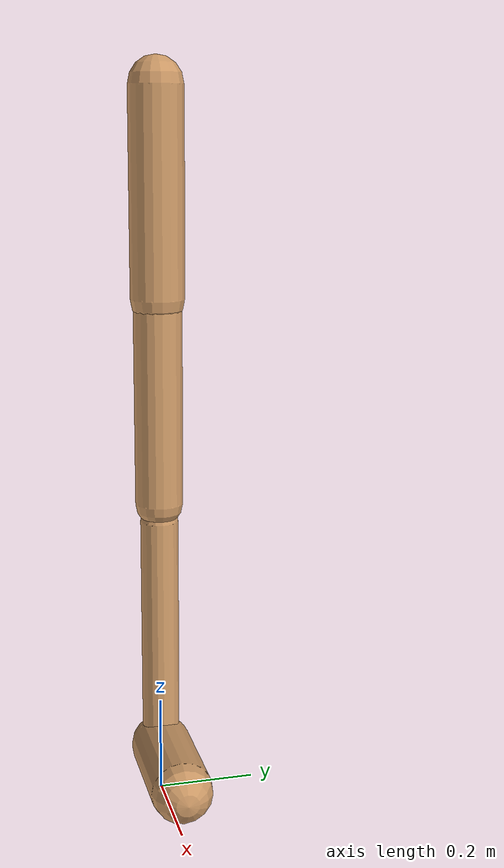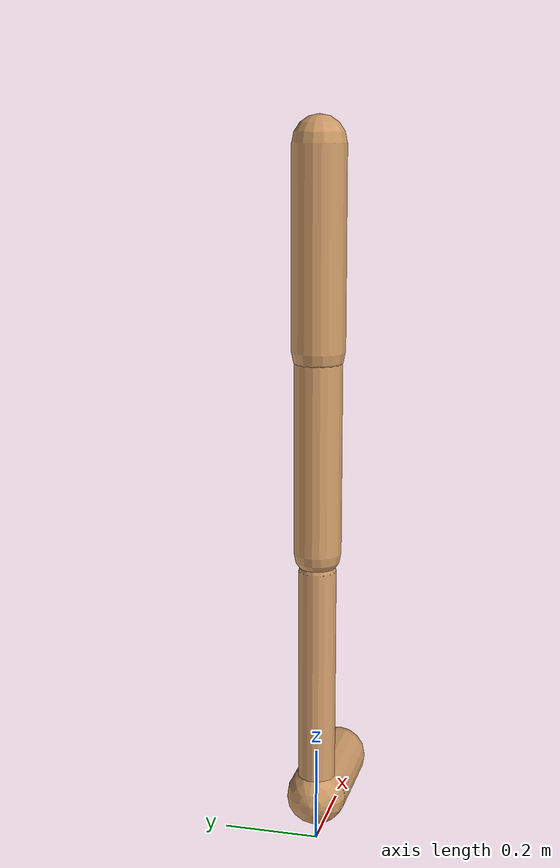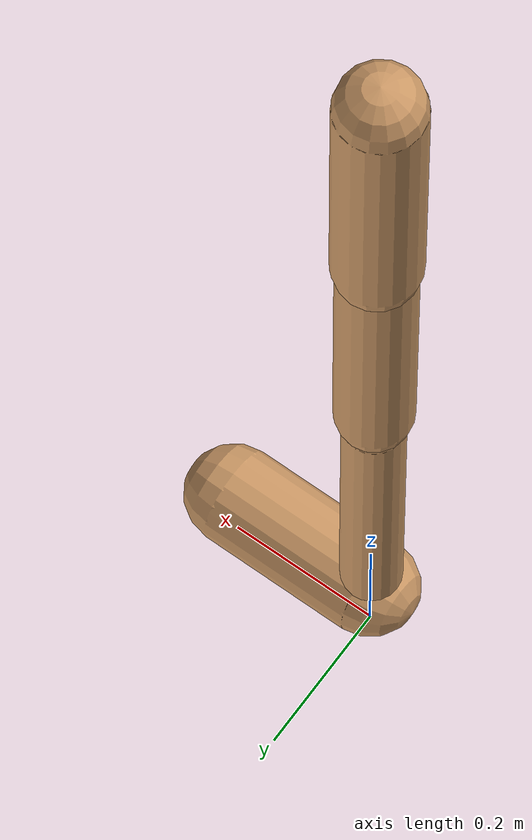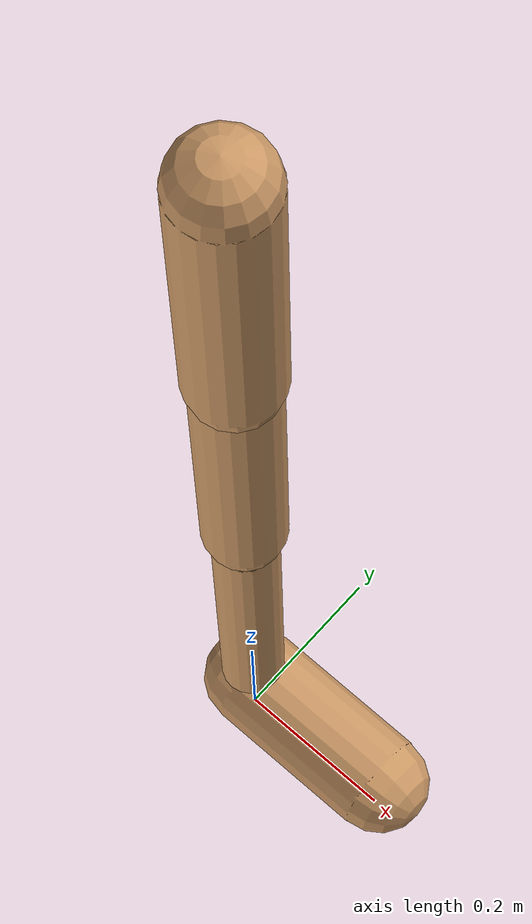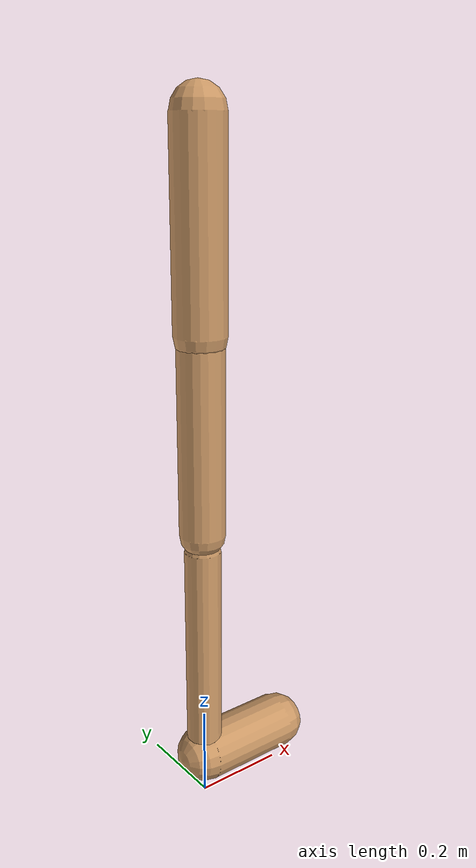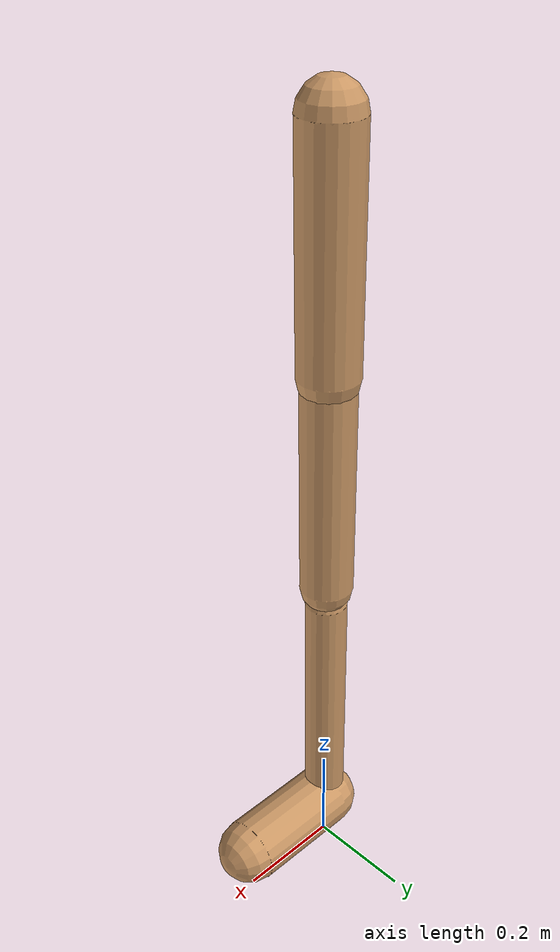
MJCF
<mujoco model="walker2d">
  <compiler angle="degree" coordinate="global" inertiafromgeom="true" />
  <default>
    <joint armature="0.01" damping=".1" limited="true" />
    <geom conaffinity="0" condim="3" contype="1" density="1000" friction="0.8 .1 .1" rgba="0.8 0.6 .4 1" />
  </default>
  <option integrator="RK4" timestep="0.002" />
  <worldbody>

    <body name="torso" pos="0 0 -0.07896813496335793">
      <joint armature="0" axis="1 0 0" damping="0" limited="false" name="ignorex" pos="0 0 0" stiffness="0" type="slide" />
      <joint armature="0" axis="0 0 1" damping="0" limited="false" name="ignorez" pos="0 0 0" ref="1.25" stiffness="0" type="slide" />
      <joint armature="0" axis="0 1 0" damping="0" limited="false" name="ignorey" pos="0 0 0" stiffness="0" type="hinge" />
      <geom fromto="0 0 1.45 0 0 1.05" name="torso_geom" size="0.053719043833291485" type="capsule" />
      <body name="thigh">
        <joint axis="0 -1 0" name="thigh_joint" pos="0 0 1.05" range="-150 0" type="hinge" />
        <geom fromto="0.0 0.0 1.05 0.0 0.0 0.6374059586668538" name="thigh_geom" size="0.04823977486581901" type="capsule" />
        <body name="leg" pos="0.0 0.0 0.03740595866685381">
          <joint axis="0 -1 0" name="leg_joint" pos="0 0 0.6" range="-150 0" type="hinge" />
          <geom fromto="0.0 0.0 0.6 0.0 0.0 0.1415621762965042" name="leg_geom" size="0.038591819892655206" type="capsule" />
          <body name="foot" pos="0.0 0.0 0.04156217629650419">
            <joint axis="0 -1 0" name="foot_joint" pos="0 0 0.1" range="-45 45" type="hinge" />
            <geom fromto="-0.0 0.0 0.1 0.20511950018681976 0.0 0.1" name="foot_geom" size="0.0621329439247226" type="capsule" />
          </body>
        </body>
      </body>

      <body name="thigh_left">
        <joint axis="0 -1 0" name="thigh_left_joint" pos="0 0 1.05" range="-150 0" type="hinge" />
        <geom fromto="0.0 0.0 1.05 0.0 0.0 0.6374059586668538" name="thigh_left_geom" rgba=".7 .3 .6 1" size="0.04823977486581901" type="capsule" />
        <body name="leg_left" pos="0.0 0.0 0.03740595866685381">
          <joint axis="0 -1 0" name="leg_left_joint" pos="0 0 0.6" range="-150 0" type="hinge" />
          <geom fromto="0.0 0.0 0.6 0.0 0.0 0.1415621762965042" name="leg_left_geom" rgba=".7 .3 .6 1" size="0.038591819892655206" type="capsule" />
          <body name="foot_left" pos="0.0 0.0 0.04156217629650419">
            <joint axis="0 -1 0" name="foot_left_joint" pos="0 0 0.1" range="-45 45" type="hinge" />
            <geom fromto="-0.0 0.0 0.1 0.20511950018681976 0.0 0.1" name="foot_left_geom" rgba=".7 .3 .6 1" size="0.0621329439247226" type="capsule" />
          </body>
        </body>
      </body>
    </body>
  </worldbody>
  <actuator>

    <motor ctrllimited="true" ctrlrange="-1.0 1.0" gear="100" joint="thigh_joint" />
    <motor ctrllimited="true" ctrlrange="-1.0 1.0" gear="100" joint="leg_joint" />
    <motor ctrllimited="true" ctrlrange="-1.0 1.0" gear="100" joint="foot_joint" />
    <motor ctrllimited="true" ctrlrange="-1.0 1.0" gear="100" joint="thigh_left_joint" />
    <motor ctrllimited="true" ctrlrange="-1.0 1.0" gear="100" joint="leg_left_joint" />
    <motor ctrllimited="true" ctrlrange="-1.0 1.0" gear="100" joint="foot_left_joint" />

  </actuator>
</mujoco>
